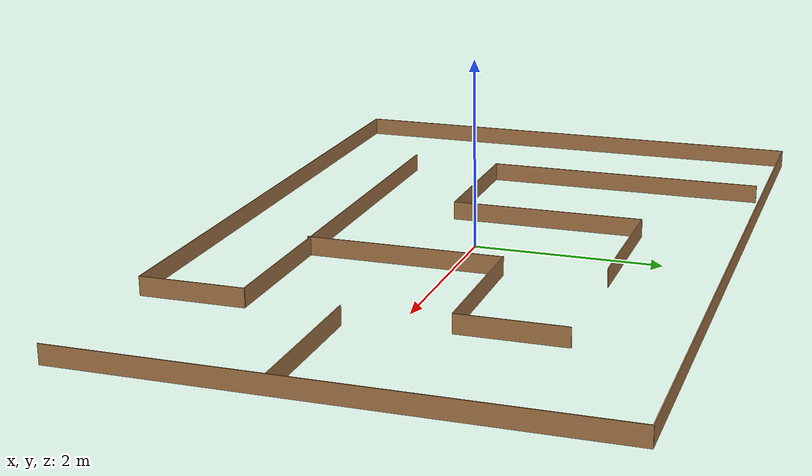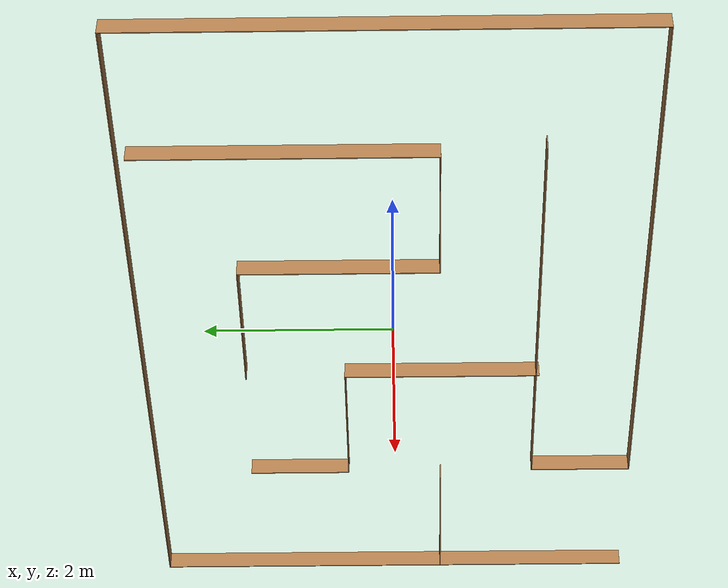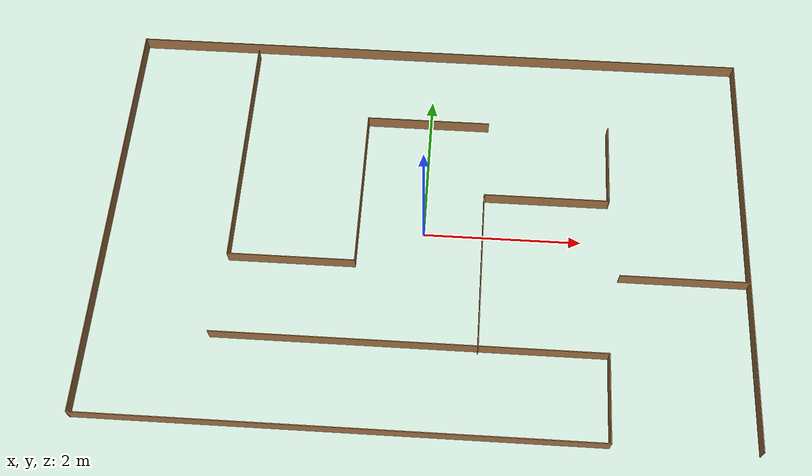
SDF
<?xml version='1.0'?>
<sdf version='1.6'>
  <model name='maze'>
    <pose frame=''>0.0245 0.032 0 0 -0 0</pose>
    <link name='Wall_0'>
      <collision name='Wall_0_Collision'>
        <geometry>
          <box>
            <size>5.36 0.01 0.2</size>
          </box>
        </geometry>
        <pose frame=''>0 0 0.1 0 -0 0</pose>
      </collision>
      <visual name='Wall_0_Visual'>
        <pose frame=''>0 0 0.1 0 -0 0</pose>
        <geometry>
          <box>
            <size>5.36 0.01 0.2</size>
          </box>
        </geometry>
        <material>
          <script>
            <uri>file://media/materials/scripts/gazebo.material</uri>
            <name>Gazebo/Wood</name>
          </script>
          <ambient>0.921569 0.807843 0.615686 1</ambient>
        </material>
      </visual>
      <pose frame=''>-4.05 0 0 0 0 -1.57098</pose>
    </link>
    <link name='Wall_1'>
      <collision name='Wall_1_Collision'>
        <geometry>
          <box>
            <size>6.3605 0.01 0.2</size>
          </box>
        </geometry>
        <pose frame=''>0 0 0.1 0 -0 0</pose>
      </collision>
      <visual name='Wall_1_Visual'>
        <pose frame=''>0 0 0.1 0 -0 0</pose>
        <geometry>
          <box>
            <size>6.3605 0.01 0.2</size>
          </box>
        </geometry>
        <material>
          <script>
            <uri>file://media/materials/scripts/gazebo.material</uri>
            <name>Gazebo/Wood</name>
          </script>
          <ambient>0.921569 0.807843 0.615686 1</ambient>
        </material>
      </visual>
      <pose frame=''>-0.875 -2.675 0 0 -0 0</pose>
    </link>
    <link name='Wall_10'>
      <collision name='Wall_10_Collision'>
        <geometry>
          <box>
            <size>5.36 0.01 0.2</size>
          </box>
        </geometry>
        <pose frame=''>0 0 0.1 0 -0 0</pose>
      </collision>
      <visual name='Wall_10_Visual'>
        <pose frame=''>0 0 0.1 0 -0 0</pose>
        <geometry>
          <box>
            <size>5.36 0.01 0.2</size>
          </box>
        </geometry>
        <material>
          <script>
            <uri>file://media/materials/scripts/gazebo.material</uri>
            <name>Gazebo/Wood</name>
          </script>
          <ambient>0.921569 0.807843 0.615686 1</ambient>
        </material>
      </visual>
      <pose frame=''>4.05 0 0 0 0 -1.57098</pose>
    </link>
    <link name='Wall_12'>
      <collision name='Wall_12_Collision'>
        <geometry>
          <box>
            <size>1.61 0.01 0.2</size>
          </box>
        </geometry>
        <pose frame=''>0 0 0.1 0 -0 0</pose>
      </collision>
      <visual name='Wall_12_Visual'>
        <pose frame=''>0 0 0.1 0 -0 0</pose>
        <geometry>
          <box>
            <size>1.61 0.01 0.2</size>
          </box>
        </geometry>
        <material>
          <script>
            <uri>file://media/materials/scripts/gazebo.material</uri>
            <name>Gazebo/Wood</name>
          </script>
          <ambient>0.921569 0.807843 0.615686 1</ambient>
        </material>
      </visual>
      <pose frame=''>3.2415 -0.5435 0 0 -0 3.14097</pose>
    </link>
    <link name='Wall_14'>
      <collision name='Wall_14_Collision'>
        <geometry>
          <box>
            <size>3.1095 0.01 0.2</size>
          </box>
        </geometry>
        <pose frame=''>0 0 0.1 0 -0 0</pose>
      </collision>
      <visual name='Wall_14_Visual'>
        <pose frame=''>0 0 0.1 0 -0 0</pose>
        <geometry>
          <box>
            <size>3.1095 0.01 0.2</size>
          </box>
        </geometry>
        <material>
          <script>
            <uri>file://media/materials/scripts/gazebo.material</uri>
            <name>Gazebo/Wood</name>
          </script>
          <ambient>0.921569 0.807843 0.615686 1</ambient>
        </material>
      </visual>
      <pose frame=''>-2.4625 1.021 0 0 0 -1.5708</pose>
    </link>
    <link name='Wall_15'>
      <collision name='Wall_15_Collision'>
        <geometry>
          <box>
            <size>1.61 0.01 0.2</size>
          </box>
        </geometry>
        <pose frame=''>0 0 0.1 0 -0 0</pose>
      </collision>
      <visual name='Wall_15_Visual'>
        <pose frame=''>0 0 0.1 0 -0 0</pose>
        <geometry>
          <box>
            <size>1.61 0.01 0.2</size>
          </box>
        </geometry>
        <material>
          <script>
            <uri>file://media/materials/scripts/gazebo.material</uri>
            <name>Gazebo/Wood</name>
          </script>
          <ambient>0.921569 0.807843 0.615686 1</ambient>
        </material>
      </visual>
      <pose frame=''>-1.6625 -0.529 0 0 -0 0</pose>
    </link>
    <link name='Wall_16'>
      <collision name='Wall_16_Collision'>
        <geometry>
          <box>
            <size>2.11 0.01 0.2</size>
          </box>
        </geometry>
        <pose frame=''>0 0 0.1 0 -0 0</pose>
      </collision>
      <visual name='Wall_16_Visual'>
        <pose frame=''>0 0 0.1 0 -0 0</pose>
        <geometry>
          <box>
            <size>2.11 0.01 0.2</size>
          </box>
        </geometry>
        <material>
          <script>
            <uri>file://media/materials/scripts/gazebo.material</uri>
            <name>Gazebo/Wood</name>
          </script>
          <ambient>0.921569 0.807843 0.615686 1</ambient>
        </material>
      </visual>
      <pose frame=''>-0.8625 0.521 0 0 -0 1.5708</pose>
    </link>
    <link name='Wall_17'>
      <collision name='Wall_17_Collision'>
        <geometry>
          <box>
            <size>1.6095 0.01 0.2</size>
          </box>
        </geometry>
        <pose frame=''>0 0 0.1 0 -0 0</pose>
      </collision>
      <visual name='Wall_17_Visual'>
        <pose frame=''>0 0 0.1 0 -0 0</pose>
        <geometry>
          <box>
            <size>1.6095 0.01 0.2</size>
          </box>
        </geometry>
        <material>
          <script>
            <uri>file://media/materials/scripts/gazebo.material</uri>
            <name>Gazebo/Wood</name>
          </script>
          <ambient>0.921569 0.807843 0.615686 1</ambient>
        </material>
      </visual>
      <pose frame=''>-0.0625 1.571 0 0 -0 0</pose>
    </link>
    <link name='Wall_2'>
      <collision name='Wall_2_Collision'>
        <geometry>
          <box>
            <size>1.11 0.01 0.2</size>
          </box>
        </geometry>
        <pose frame=''>0 0 0.1 0 -0 0</pose>
      </collision>
      <visual name='Wall_2_Visual'>
        <pose frame=''>0 0 0.1 0 -0 0</pose>
        <geometry>
          <box>
            <size>1.11 0.01 0.2</size>
          </box>
        </geometry>
        <material>
          <script>
            <uri>file://media/materials/scripts/gazebo.material</uri>
            <name>Gazebo/Wood</name>
          </script>
          <ambient>0.921569 0.807843 0.615686 1</ambient>
        </material>
      </visual>
      <pose frame=''>2.3005 -2.125 0 0 -0 1.5708</pose>
    </link>
    <link name='Wall_3'>
      <collision name='Wall_3_Collision'>
        <geometry>
          <box>
            <size>4.8605 0.01 0.2</size>
          </box>
        </geometry>
        <pose frame=''>0 0 0.1 0 -0 0</pose>
      </collision>
      <visual name='Wall_3_Visual'>
        <pose frame=''>0 0 0.1 0 -0 0</pose>
        <geometry>
          <box>
            <size>4.8605 0.01 0.2</size>
          </box>
        </geometry>
        <material>
          <script>
            <uri>file://media/materials/scripts/gazebo.material</uri>
            <name>Gazebo/Wood</name>
          </script>
          <ambient>0.921569 0.807843 0.615686 1</ambient>
        </material>
      </visual>
      <pose frame=''>-0.125 -1.575 0 0 -0 3.14159</pose>
    </link>
    <link name='Wall_5'>
      <collision name='Wall_5_Collision'>
        <geometry>
          <box>
            <size>2.11 0.01 0.2</size>
          </box>
        </geometry>
        <pose frame=''>0 0 0.1 0 -0 0</pose>
      </collision>
      <visual name='Wall_5_Visual'>
        <pose frame=''>0 0 0.1 0 -0 0</pose>
        <geometry>
          <box>
            <size>2.11 0.01 0.2</size>
          </box>
        </geometry>
        <material>
          <script>
            <uri>file://media/materials/scripts/gazebo.material</uri>
            <name>Gazebo/Wood</name>
          </script>
          <ambient>0.921569 0.807843 0.615686 1</ambient>
        </material>
      </visual>
      <pose frame=''>0.7225 -0.553 0 0 -0 1.5708</pose>
    </link>
    <link name='Wall_6'>
      <collision name='Wall_6_Collision'>
        <geometry>
          <box>
            <size>1.61 0.01 0.2</size>
          </box>
        </geometry>
        <pose frame=''>0 0 0.1 0 -0 0</pose>
      </collision>
      <visual name='Wall_6_Visual'>
        <pose frame=''>0 0 0.1 0 -0 0</pose>
        <geometry>
          <box>
            <size>1.61 0.01 0.2</size>
          </box>
        </geometry>
        <material>
          <script>
            <uri>file://media/materials/scripts/gazebo.material</uri>
            <name>Gazebo/Wood</name>
          </script>
          <ambient>0.921569 0.807843 0.615686 1</ambient>
        </material>
      </visual>
      <pose frame=''>1.5225 0.497 0 0 -0 0</pose>
    </link>
    <link name='Wall_7'>
      <collision name='Wall_7_Collision'>
        <geometry>
          <box>
            <size>1.11 0.01 0.2</size>
          </box>
        </geometry>
        <pose frame=''>0 0 0.1 0 -0 0</pose>
      </collision>
      <visual name='Wall_7_Visual'>
        <pose frame=''>0 0 0.1 0 -0 0</pose>
        <geometry>
          <box>
            <size>1.11 0.01 0.2</size>
          </box>
        </geometry>
        <material>
          <script>
            <uri>file://media/materials/scripts/gazebo.material</uri>
            <name>Gazebo/Wood</name>
          </script>
          <ambient>0.921569 0.807843 0.615686 1</ambient>
        </material>
      </visual>
      <pose frame=''>2.3225 1.047 0 0 -0 1.5708</pose>
    </link>
    <link name='Wall_9'>
      <collision name='Wall_9_Collision'>
        <geometry>
          <box>
            <size>8.1095 0.01 0.2</size>
          </box>
        </geometry>
        <pose frame=''>0 0 0.1 0 -0 0</pose>
      </collision>
      <visual name='Wall_9_Visual'>
        <pose frame=''>0 0 0.1 0 -0 0</pose>
        <geometry>
          <box>
            <size>8.1095 0.01 0.2</size>
          </box>
        </geometry>
        <material>
          <script>
            <uri>file://media/materials/scripts/gazebo.material</uri>
            <name>Gazebo/Wood</name>
          </script>
          <ambient>0.921569 0.807843 0.615686 1</ambient>
        </material>
      </visual>
      <pose frame=''>0.0005 2.675 0 0 -0 0</pose>
    </link>
    <static>1</static>
  </model>
</sdf>
